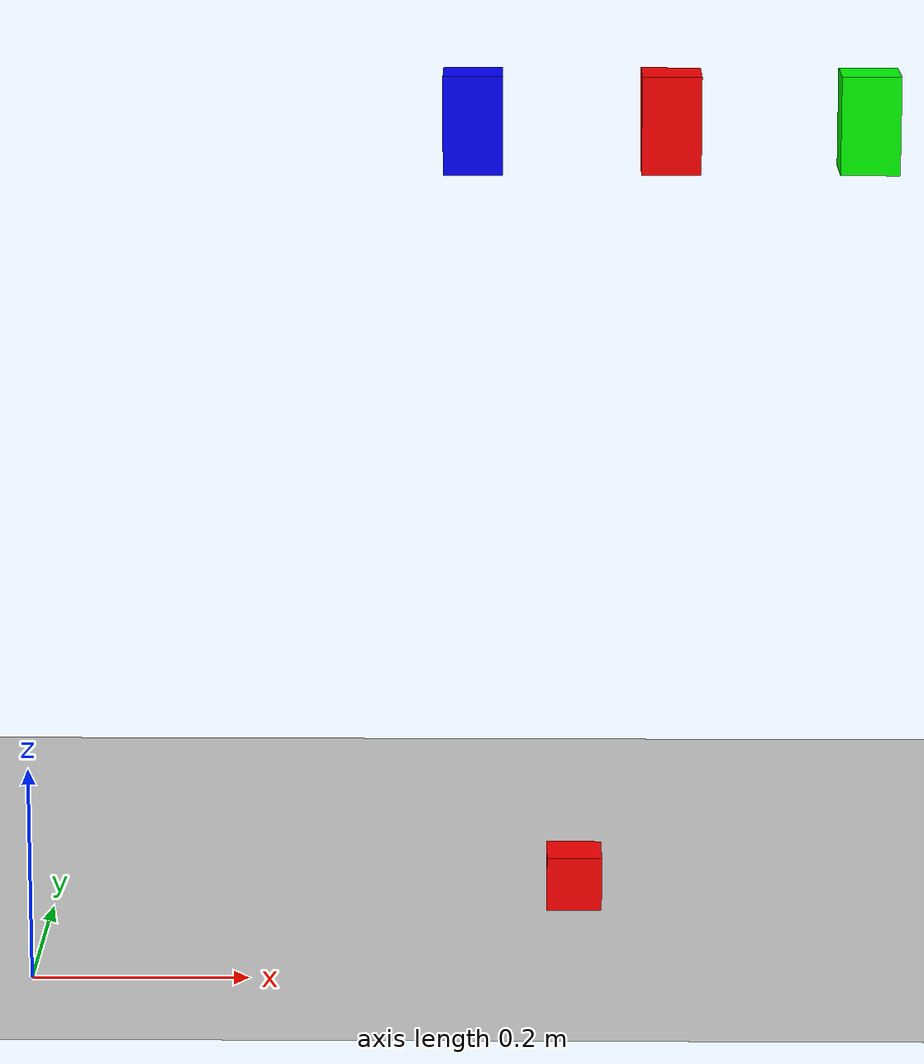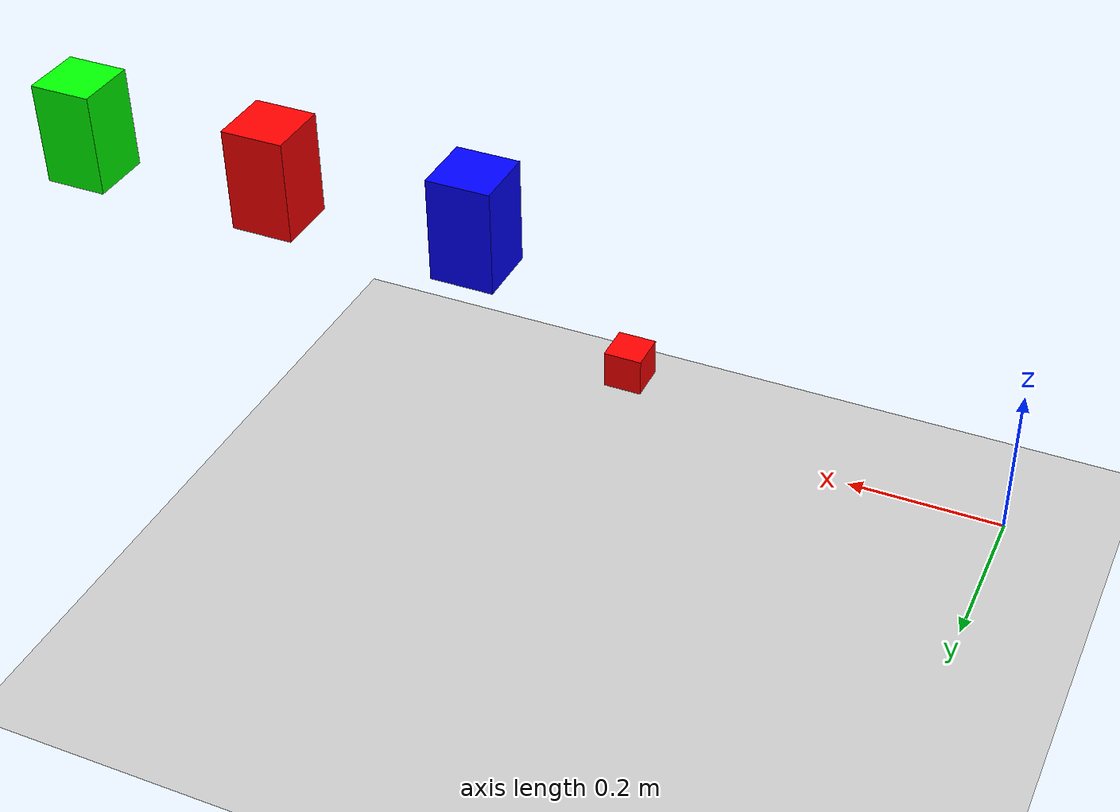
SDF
<sdf version='1.9'>
  <world name='empty_world'>
    <gravity>0 0 -9.8</gravity>
    <magnetic_field>6e-06 2.3e-05 -4.2e-05</magnetic_field>
    <atmosphere type='adiabatic'/>
    <physics type='ode'>
      <max_step_size>0.001</max_step_size>
      <real_time_factor>1</real_time_factor>
      <real_time_update_rate>1000</real_time_update_rate>
    </physics>
    <scene>
      <ambient>0.4 0.4 0.4 1</ambient>
      <background>0.7 0.7 0.7 1</background>
      <shadows>true</shadows>
    </scene>

  <!-- ================= RED BOX ================= -->
  <model name="red_box2">
    <static>false</static>
    <link name="red_link2">
      <pose>0.6 0.6 0.70 0 0 0</pose>
      <collision name="red_collision">
        <geometry>
          <box>
            <size>0.06 0.06 0.1</size>
          </box>
        </geometry>
      </collision>
      <visual name="red_visual">
        <geometry>
          <box>
            <size>0.06 0.06 0.1</size>
          </box>
        </geometry>
        <material>
          <ambient>1 0 0 1</ambient>   <!-- Red -->
          <diffuse>1 0 0 1</diffuse>
        </material>
      </visual>
    </link>
  </model>

  <!-- ================= GREEN BOX ================= -->
  <model name="green_box2">
    <static>false</static>
    <link name="green_link2">
      <pose>0.8 0.6 0.70 0 0 0</pose>
      <collision name="green_collision">
        <geometry>
          <box>
            <size>0.06 0.06 0.1</size>
          </box>
        </geometry>
      </collision>
      <visual name="green_visual">
        <geometry>
          <box>
            <size>0.06 0.06 0.1</size>
          </box>
        </geometry>
        <material>
          <ambient>0 1 0 1</ambient>   <!-- Green -->
          <diffuse>0 1 0 1</diffuse>
        </material>
      </visual>
    </link>
  </model>

  <!-- ================= BLUE BOX ================= -->
  <model name="blue_box2">
    <static>false</static>
    <link name="blue_link2">
      <pose>0.4 0.6 0.70 0 0 0</pose>
      <collision name="blue_collision">
        <geometry>
          <box>
            <size>0.06 0.06 0.1</size>
          </box>
        </geometry>
      </collision>
      <visual name="blue_visual">
        <geometry>
          <box>
            <size>0.06 0.06 0.1</size>
          </box>
        </geometry>
        <material>
          <ambient>0 0 1 1</ambient>   <!-- Blue -->
          <diffuse>0 0 1 1</diffuse>
        </material>
      </visual>
    </link>
  </model>
    <model name='ground_plane'>
      <static>true</static>
      <link name='link'>
        <collision name='collision'>
          <geometry>
            <plane>
              <normal>0 0 1</normal>
              <size>1 1</size>
            </plane>
          </geometry>
          <surface>
            <friction>
              <ode/>
            </friction>
            <bounce/>
            <contact/>
          </surface>
        </collision>
        <visual name='visual'>
          <geometry>
            <plane>
              <normal>0 0 1</normal>
              <size>100 100</size>
            </plane>
          </geometry>
          <material>
            <ambient>0.8 0.8 0.8 1</ambient>
            <diffuse>0.8 0.8 0.8 1</diffuse>
            <specular>0.8 0.8 0.8 1</specular>
          </material>
        </visual>
        <pose>0 0 0 0 -0 0</pose>
        <inertial>
          <pose>0 0 0 0 -0 0</pose>
          <mass>1</mass>
          <inertia>
            <ixx>1</ixx>
            <ixy>0</ixy>
            <ixz>0</ixz>
            <iyy>1</iyy>
            <iyz>0</iyz>
            <izz>1</izz>
          </inertia>
        </inertial>
        <enable_wind>false</enable_wind>
      </link>
      <pose>0 0 0 0 -0 0</pose>
      <self_collide>false</self_collide>
    </model>
    <light name='sun' type='directional'>
      <pose>0 0 10 0 -0 0</pose>
      <cast_shadows>true</cast_shadows>
      <intensity>1</intensity>
      <direction>-0.5 0.1 -0.9</direction>
      <diffuse>0.8 0.8 0.8 1</diffuse>
      <specular>0.2 0.2 0.2 1</specular>
      <attenuation>
        <range>1000</range>
        <linear>0.01</linear>
        <constant>0.90000000000000002</constant>
        <quadratic>0.001</quadratic>
      </attenuation>
      <spot>
        <inner_angle>0</inner_angle>
        <outer_angle>0</outer_angle>
        <falloff>0</falloff>
      </spot>
    </light>

  <model name="target_box">
    <static>false</static>
    <pose>0.5 0.0 0.1 0 0 0</pose>
    <link name="box_link">
      <inertial>
        <mass>0.1</mass>
        <inertia>
          <ixx>0.0001</ixx>
          <iyy>0.0001</iyy>
          <izz>0.0001</izz>
        </inertia>
      </inertial>
      <collision name="collision">
        <geometry>
          <box>
            <size>0.05 0.05 0.05</size>
          </box>
        </geometry>
      </collision>
      <visual name="visual">
        <geometry>
          <box>
            <size>0.05 0.05 0.05</size>
          </box>
        </geometry>
        <material>
          <ambient>1 0 0 1</ambient>
          <diffuse>1 0 0 1</diffuse>
        </material>
      </visual>
    </link>
  </model>

  </world>
</sdf>
